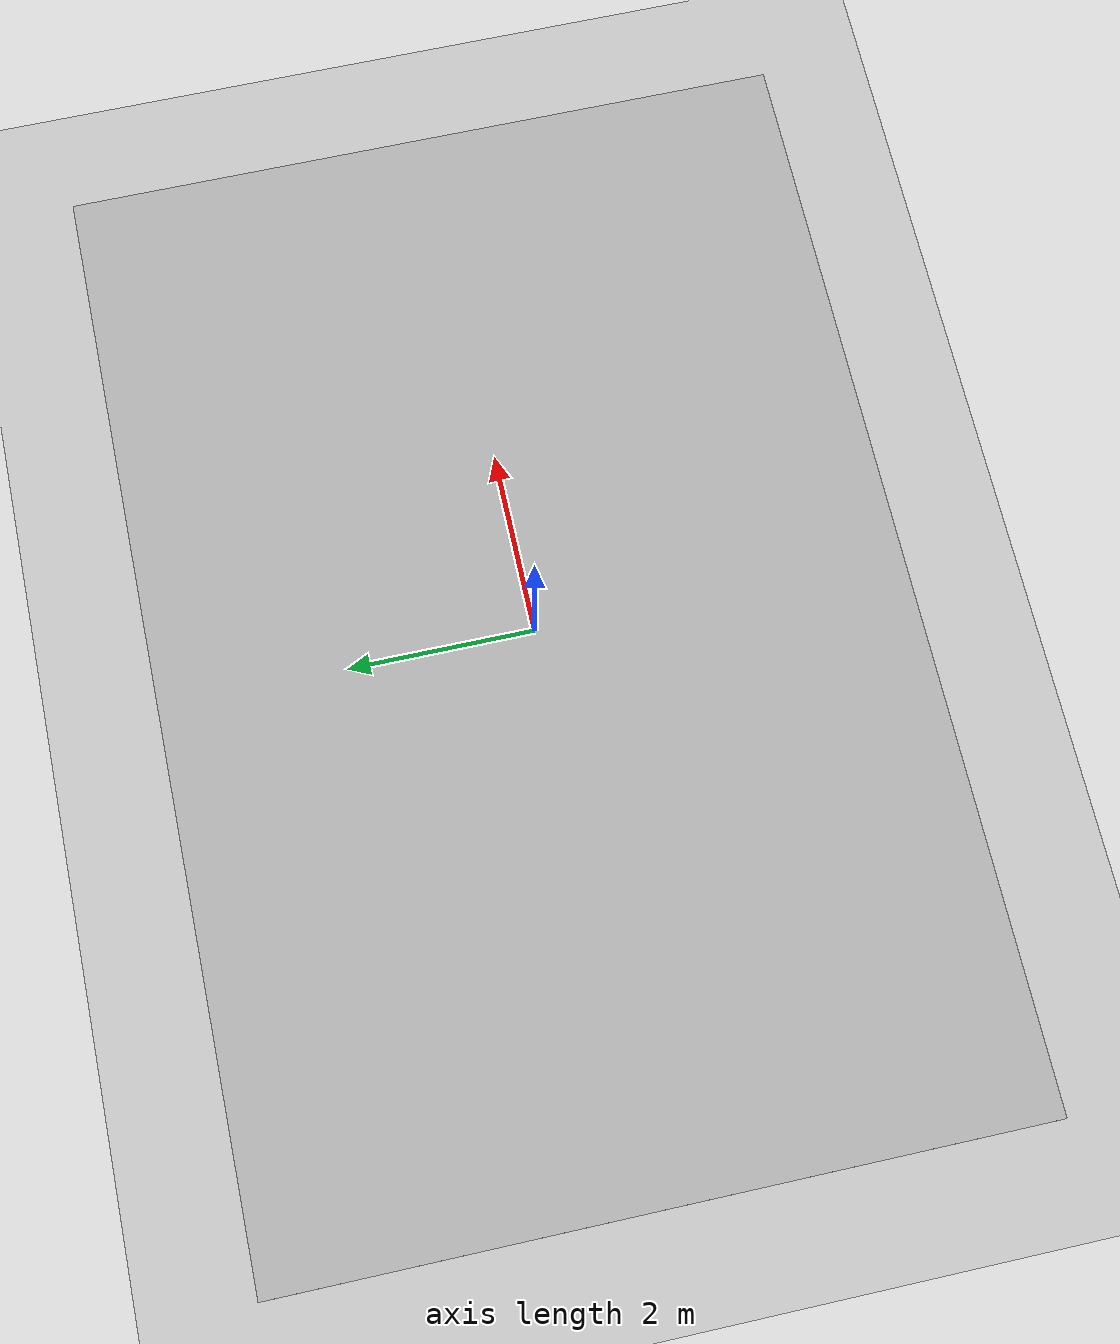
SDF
<?xml version="1.0" ?>
<sdf version="1.5">
  <world name="default">

    <include>
      <uri>model://ground_plane</uri>
      <pose> 0 0 -.0001 0 0 0 </pose>
    </include>

    <light name="inner_point_white1" type="point">
      <pose>5 3 4 0 0 0</pose>
      <diffuse>0.2 0.2 0.2 1</diffuse>
      <specular>0.1 0.1 0.1 1</specular>
      <attenuation>
        <range>20</range>
        <linear>0.1</linear>
        <constant>0.2</constant>
        <quadratic>0</quadratic>
      </attenuation>
      <cast_shadows>0</cast_shadows>
      <direction>0 0 -1</direction>
    </light>
    <light name="inner_point_white2" type="point">
      <pose>0 3 4 0 0 0</pose>
      <diffuse>0.2 0.2 0.2 1</diffuse>
      <specular>0.1 0.1 0.1 1</specular>
      <attenuation>
        <range>20</range>
        <linear>0.1</linear>
        <constant>0.2</constant>
        <quadratic>0</quadratic>
      </attenuation>
      <cast_shadows>0</cast_shadows>
      <direction>0 0 -1</direction>
    </light>
    <light name="inner_point_white3" type="point">
      <pose>-5 3 4 0 0 0</pose>
      <diffuse>0.2 0.2 0.2 1</diffuse>
      <specular>0.1 0.1 0.1 1</specular>
      <attenuation>
        <range>20</range>
        <linear>0.1</linear>
        <constant>0.2</constant>
        <quadratic>0</quadratic>
      </attenuation>
      <cast_shadows>0</cast_shadows>
      <direction>0 0 -1</direction>
    </light>
    <light name="inner_point_white4" type="point">
      <pose>-5 -3 4 0 0 0</pose>
      <diffuse>0.2 0.2 0.2 1</diffuse>
      <specular>0.1 0.1 0.1 1</specular>
      <attenuation>
        <range>20</range>
        <linear>0.1</linear>
        <constant>0.2</constant>
        <quadratic>0</quadratic>
      </attenuation>
      <cast_shadows>0</cast_shadows>
      <direction>0 0 -1</direction>
    </light>
    <light name="inner_point_white5" type="point">
      <pose>0 -3 4 0 0 0</pose>
      <diffuse>0.2 0.2 0.2 1</diffuse>
      <specular>0.1 0.1 0.1 1</specular>
      <attenuation>
        <range>20</range>
        <linear>0.1</linear>
        <constant>0.2</constant>
        <quadratic>0</quadratic>
      </attenuation>
      <cast_shadows>0</cast_shadows>
      <direction>0 0 -1</direction>
    </light>
    <light name="inner_point_white6" type="point">
      <pose>5 -3 4 0 0 0</pose>
      <diffuse>0.2 0.2 0.2 1</diffuse>
      <specular>0.1 0.1 0.1 1</specular>
      <attenuation>
        <range>20</range>
        <linear>0.1</linear>
        <constant>0.2</constant>
        <quadratic>0</quadratic>
      </attenuation>
      <cast_shadows>0</cast_shadows>
      <direction>0 0 -1</direction>
    </light>

    <include>
      <uri>model://pista_tmr_2021</uri>
      <pose> 0 0 0.01 0 0 0 </pose>
      <name>PistaTMR2021</name>
    </include>

    <gui fullscreen="0">
      <camera name="user_camera">
        <pose>1.15 1.93 2.85 0 1.08 1.07</pose>
        <view_controller>orbit</view_controller>
      </camera>
    </gui>
  </world>
</sdf>

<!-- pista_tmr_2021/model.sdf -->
<sdf version="1.4">
	<model name="pista_tmr_2021">
		<static>true</static>
		<link name="pista_link">
			<collision name="collision">
				<geometry>
					<plane>
						<normal>0 0 1</normal>
						<size>12 8</size>
					</plane>
				</geometry>
				<surface>
					<friction>
						<ode>
							<mu>100</mu>
							<mu2>50</mu2>
						</ode>
					</friction>
				</surface>
			</collision>
			<visual name="visual">
				<geometry>
					<plane>
						<normal>0 0 1</normal>
						<size>12 8</size>
					</plane>
				</geometry>
				<material>
					<script>
						<uri>model://pista_tmr_2021/materials/scripts</uri>
						<uri>model://pista_tmr_2021/materials/textures</uri>
						<name>pista_tmr_2021/Image</name>
					</script>
				</material>
			</visual>
		</link>
	</model>
</sdf>
